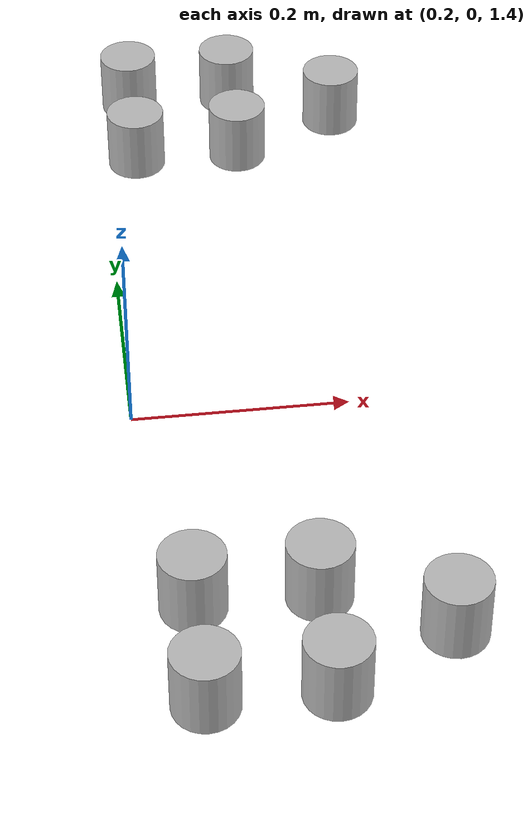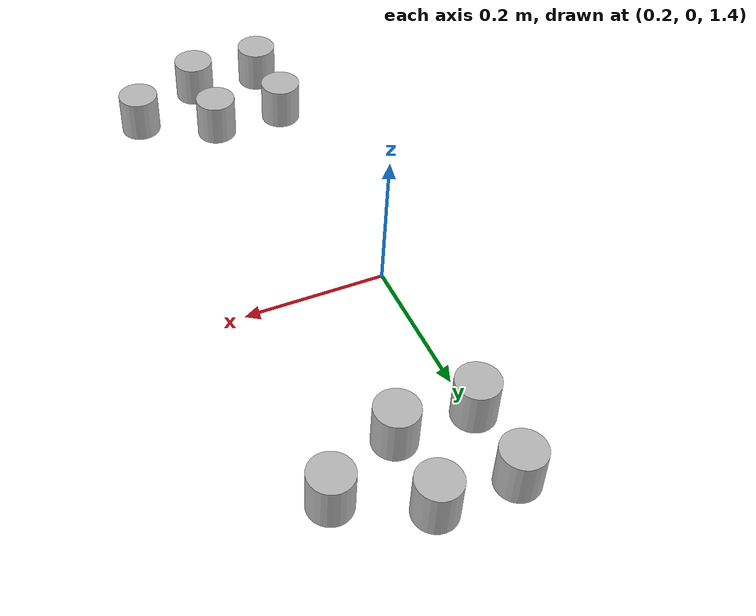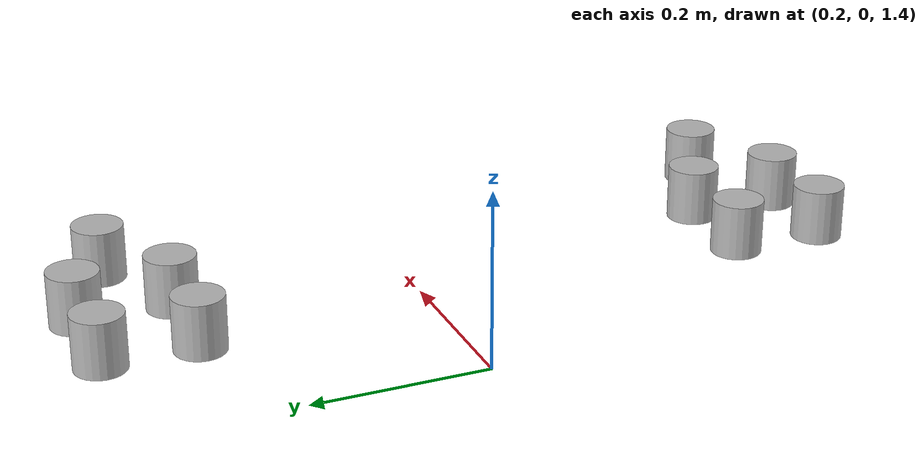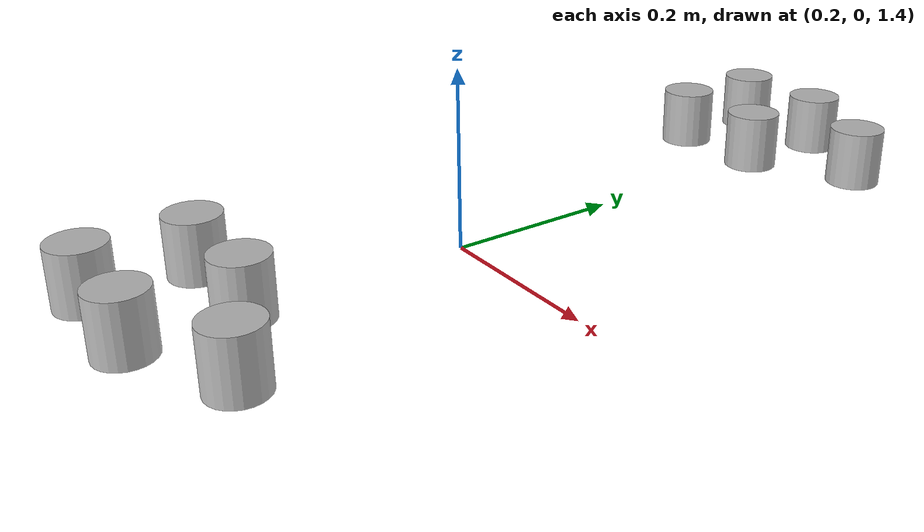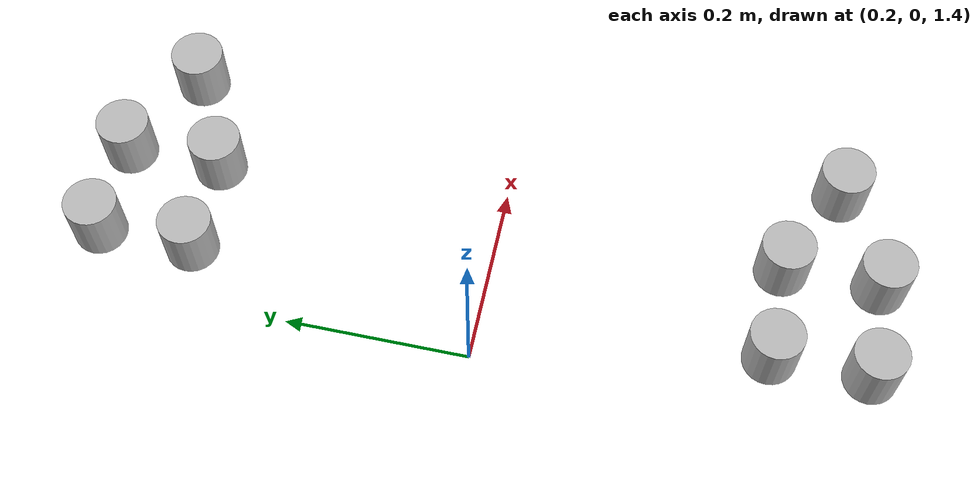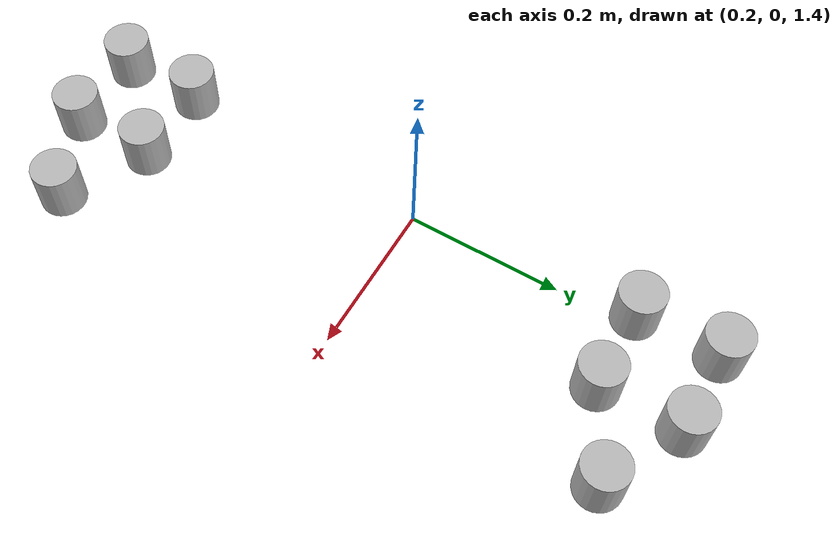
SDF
<sdf version="1.6">
 <world name="CRANE-X7 with Table">
  <include><uri>model://sun</uri></include>
  <model name="cup1">
   <pose>0.43 0.35 1.5 0 0 0</pose>
   <link name="link">
    <inertial>
     <mass>1.0</mass>
     <inertia><ixx>0.083</ixx><ixy>0.0</ixy><ixz>0.0</ixz><iyy>0.083</iyy><iyz>0.0</iyz><izz>0.083</izz></inertia>
    </inertial>
    <collision name="collision">
     <geometry><cylinder><radius>0.0275</radius><length>0.06</length></cylinder></geometry>
    </collision>
    <visual name="visual">
     <geometry><cylinder><radius>0.0275</radius><length>0.06</length></cylinder></geometry>
    </visual>
   </link>
  </model>
  <model name="cup2">
   <pose>0.33 0.4 1.5 0 0 0</pose>
   <link name="link">
    <inertial>
     <mass>1.0</mass>
     <inertia><ixx>0.083</ixx><ixy>0.0</ixy><ixz>0.0</ixz><iyy>0.083</iyy><iyz>0.0</iyz><izz>0.083</izz></inertia>
    </inertial>
    <collision name="collision">
     <geometry><cylinder><radius>0.0275</radius><length>0.06</length></cylinder></geometry>
    </collision>
    <visual name="visual">
     <geometry><cylinder><radius>0.0275</radius><length>0.06</length></cylinder></geometry>
    </visual>
   </link>
  </model>
  <model name="cup3">
   <pose>0.33 0.3 1.5 0 0 0</pose>
   <link name="link">
    <inertial>
     <mass>1.0</mass>
     <inertia><ixx>0.083</ixx><ixy>0.0</ixy><ixz>0.0</ixz><iyy>0.083</iyy><iyz>0.0</iyz><izz>0.083</izz></inertia>
    </inertial>
    <collision name="collision">
     <geometry><cylinder><radius>0.0275</radius><length>0.06</length></cylinder></geometry>
    </collision>
    <visual name="visual">
     <geometry><cylinder><radius>0.0275</radius><length>0.06</length></cylinder></geometry>
    </visual>
   </link>
  </model>
  <model name="cup4">
   <pose>0.23 0.4 1.5 0 0 0</pose>
   <link name="link">
    <inertial>
     <mass>1.0</mass>
     <inertia><ixx>0.083</ixx><ixy>0.0</ixy><ixz>0.0</ixz><iyy>0.083</iyy><iyz>0.0</iyz><izz>0.083</izz></inertia>
    </inertial>
    <collision name="collision">
     <geometry><cylinder><radius>0.0275</radius><length>0.06</length></cylinder></geometry>
    </collision>
    <visual name="visual">
     <geometry><cylinder><radius>0.0275</radius><length>0.06</length></cylinder></geometry>
    </visual>
   </link>
  </model>
  <model name="cup5">
   <pose>0.23 0.3 1.5 0 0 0</pose>
   <link name="link">
    <inertial>
     <mass>1.0</mass>
     <inertia>
      <ixx>0.0023</ixx>
      <ixy>0.0</ixy>
      <ixz>0.0</ixz>
      <iyy>0.0023</iyy>
      <iyz>0.0</iyz>
      <izz>0.0023</izz>
     </inertia>
    </inertial>
    <collision name="collision">
     <geometry><cylinder><radius>0.0275</radius><length>0.06</length></cylinder></geometry>
    </collision>
    <visual name="visual">
     <geometry><cylinder><radius>0.0275</radius><length>0.06</length></cylinder></geometry>
    </visual>
   </link>
  </model>
  <model name="cup6">
   <pose>0.23 -0.3 1.5 0 0 0</pose>
   <link name="link">
    <inertial>
     <mass>1.0</mass>
     <inertia><ixx>0.083</ixx><ixy>0.0</ixy><ixz>0.0</ixz><iyy>0.083</iyy><iyz>0.0</iyz><izz>0.083</izz></inertia>
    </inertial>
    <collision name="collision">
     <geometry><cylinder><radius>0.0275</radius><length>0.06</length></cylinder></geometry>
    </collision>
    <visual name="visual">
     <geometry><cylinder><radius>0.0275</radius><length>0.06</length></cylinder></geometry>
    </visual>
   </link>
  </model>
  <model name="cup7">
   <pose>0.23 -0.4 1.5 0 0 0</pose>
   <link name="link">
    <inertial>
     <mass>1.0</mass>
     <inertia><ixx>0.083</ixx><ixy>0.0</ixy><ixz>0.0</ixz><iyy>0.083</iyy><iyz>0.0</iyz><izz>0.083</izz></inertia>
    </inertial>
    <collision name="collision">
     <geometry><cylinder><radius>0.0275</radius><length>0.06</length></cylinder></geometry>
    </collision>
    <visual name="visual">
     <geometry><cylinder><radius>0.0275</radius><length>0.06</length></cylinder></geometry>
    </visual>
   </link>
  </model>
  <model name="cup8">
   <pose>0.33 -0.3 1.5 0 0 0</pose>
   <link name="link">
    <inertial>
     <mass>1.0</mass>
     <inertia><ixx>0.083</ixx><ixy>0.0</ixy><ixz>0.0</ixz><iyy>0.083</iyy><iyz>0.0</iyz><izz>0.083</izz></inertia>
    </inertial>
    <collision name="collision">
     <geometry><cylinder><radius>0.0275</radius><length>0.06</length></cylinder></geometry>
    </collision>
    <visual name="visual">
     <geometry><cylinder><radius>0.0275</radius><length>0.06</length></cylinder></geometry>
    </visual>
   </link>
  </model>
  <model name="cup9">
   <pose>0.33 -0.4 1.5 0 0 0</pose>
   <link name="link">
    <inertial>
     <mass>1.0</mass>
     <inertia><ixx>0.083</ixx><ixy>0.0</ixy><ixz>0.0</ixz><iyy>0.083</iyy><iyz>0.0</iyz><izz>0.083</izz></inertia>
    </inertial>
    <collision name="collision">
     <geometry><cylinder><radius>0.0275</radius><length>0.06</length></cylinder></geometry>
    </collision>
    <visual name="visual">
     <geometry><cylinder><radius>0.0275</radius><length>0.06</length></cylinder></geometry>
    </visual>
   </link>
  </model>
  <model name="cup10">
   <pose>0.43 -0.35 1.5 0 0 0</pose>
   <link name="link">
    <inertial>
     <mass>1.0</mass>
     <inertia><ixx>0.083</ixx><ixy>0.0</ixy><ixz>0.0</ixz><iyy>0.083</iyy><iyz>0.0</iyz><izz>0.083</izz></inertia>
    </inertial>
    <collision name="collision">
     <geometry><cylinder><radius>0.0275</radius><length>0.06</length></cylinder></geometry>
    </collision>
    <visual name="visual">
     <geometry><cylinder><radius>0.0275</radius><length>0.06</length></cylinder></geometry>
    </visual>
   </link>
  </model>
  <model name="ground_plane">
   <include><uri>model://ground_plane</uri></include>
   <joint name="ground_joint" type="fixed"><parent>ground_plane::link</parent><child>table::link</child></joint>
  </model>
 </world>
</sdf>
